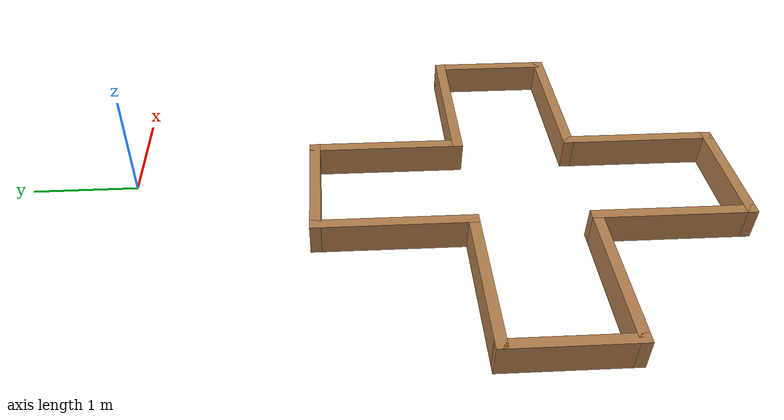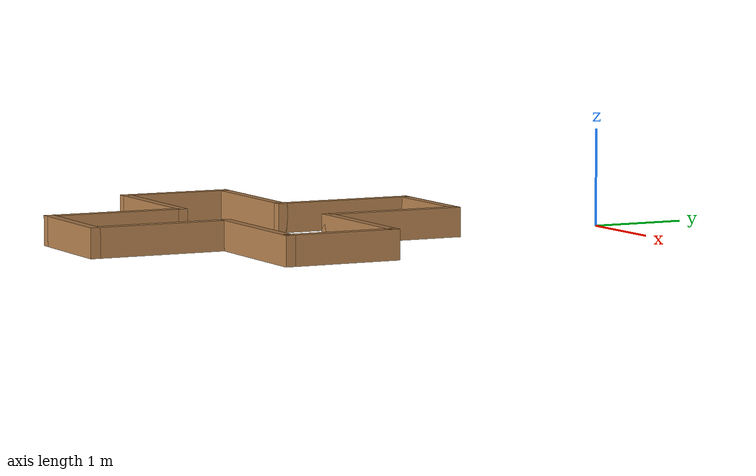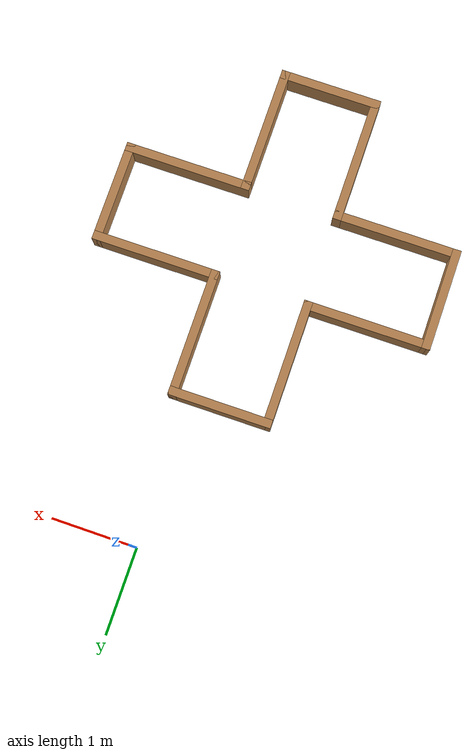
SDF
<?xml version='1.0'?>
<sdf version='1.7'>
  <model name='new_stage_cross'>
    <pose>-0.38 -2.845 0 0 -0 0</pose>
    <link name='Wall_0'>
      <collision name='Wall_0_Collision'>
        <geometry>
          <box>
            <size>1.2 0.1 0.3</size>
          </box>
        </geometry>
        <pose>0 0 0.15 0 -0 0</pose>
      </collision>
      <visual name='Wall_0_Visual'>
        <pose>0 0 0.15 0 -0 0</pose>
        <geometry>
          <box>
            <size>1.2 0.1 0.3</size>
          </box>
        </geometry>
        <material>
          <script>
            <uri>file://media/materials/scripts/gazebo.material</uri>
            <name>Gazebo/Wood</name>
          </script>
          <ambient>1 0.764706 0.305882 1</ambient>
        </material>
        <meta>
          <layer>0</layer>
        </meta>
      </visual>
      <pose>0 1.105 0 0 -0 0</pose>
    </link>
    <link name='Wall_10'>
      <collision name='Wall_10_Collision'>
        <geometry>
          <box>
            <size>1.5 0.1 0.3</size>
          </box>
        </geometry>
        <pose>0 0 0.15 0 -0 0</pose>
      </collision>
      <visual name='Wall_10_Visual'>
        <pose>0 0 0.15 0 -0 0</pose>
        <geometry>
          <box>
            <size>1.5 0.1 0.3</size>
          </box>
        </geometry>
        <material>
          <script>
            <uri>file://media/materials/scripts/gazebo.material</uri>
            <name>Gazebo/Wood</name>
          </script>
          <ambient>1 1 1 1</ambient>
        </material>
        <meta>
          <layer>0</layer>
        </meta>
      </visual>
      <pose>1.25 -1.395 0 0 -0 3.14159</pose>
    </link>
    <link name='Wall_12'>
      <collision name='Wall_12_Collision'>
        <geometry>
          <box>
            <size>1.5 0.1 0.3</size>
          </box>
        </geometry>
        <pose>0 0 0.15 0 -0 0</pose>
      </collision>
      <visual name='Wall_12_Visual'>
        <pose>0 0 0.15 0 -0 0</pose>
        <geometry>
          <box>
            <size>1.5 0.1 0.3</size>
          </box>
        </geometry>
        <material>
          <script>
            <uri>file://media/materials/scripts/gazebo.material</uri>
            <name>Gazebo/Wood</name>
          </script>
          <ambient>1 1 1 1</ambient>
        </material>
        <meta>
          <layer>0</layer>
        </meta>
      </visual>
      <pose>0.55 -2.095 0 0 -0 -1.5708</pose>
    </link>
    <link name='Wall_14'>
      <collision name='Wall_14_Collision'>
        <geometry>
          <box>
            <size>1.2 0.1 0.3</size>
          </box>
        </geometry>
        <pose>0 0 0.15 0 -0 0</pose>
      </collision>
      <visual name='Wall_14_Visual'>
        <pose>0 0 0.15 0 -0 0</pose>
        <geometry>
          <box>
            <size>1.2 0.1 0.3</size>
          </box>
        </geometry>
        <material>
          <script>
            <uri>file://media/materials/scripts/gazebo.material</uri>
            <name>Gazebo/Wood</name>
          </script>
          <ambient>1 0.764706 0.305882 1</ambient>
        </material>
        <meta>
          <layer>0</layer>
        </meta>
      </visual>
      <pose>0 -2.795 0 0 -0 3.14159</pose>
    </link>
    <link name='Wall_16'>
      <collision name='Wall_16_Collision'>
        <geometry>
          <box>
            <size>1.5 0.1 0.3</size>
          </box>
        </geometry>
        <pose>0 0 0.15 0 -0 0</pose>
      </collision>
      <visual name='Wall_16_Visual'>
        <pose>0 0 0.15 0 -0 0</pose>
        <geometry>
          <box>
            <size>1.5 0.1 0.3</size>
          </box>
        </geometry>
        <material>
          <script>
            <uri>file://media/materials/scripts/gazebo.material</uri>
            <name>Gazebo/Wood</name>
          </script>
          <ambient>1 0.764706 0.305882 1</ambient>
        </material>
        <meta>
          <layer>0</layer>
        </meta>
      </visual>
      <pose>-0.55 -2.095 0 0 -0 1.5708</pose>
    </link>
    <link name='Wall_18'>
      <collision name='Wall_18_Collision'>
        <geometry>
          <box>
            <size>1.5 0.1 0.3</size>
          </box>
        </geometry>
        <pose>0 0 0.15 0 -0 0</pose>
      </collision>
      <visual name='Wall_18_Visual'>
        <pose>0 0 0.15 0 -0 0</pose>
        <geometry>
          <box>
            <size>1.5 0.1 0.3</size>
          </box>
        </geometry>
        <material>
          <script>
            <uri>file://media/materials/scripts/gazebo.material</uri>
            <name>Gazebo/Wood</name>
          </script>
          <ambient>1 0.764706 0.305882 1</ambient>
        </material>
        <meta>
          <layer>0</layer>
        </meta>
      </visual>
      <pose>-1.25 -1.395 0 0 -0 3.14159</pose>
    </link>
    <link name='Wall_2'>
      <collision name='Wall_2_Collision'>
        <geometry>
          <box>
            <size>1.5 0.1 0.3</size>
          </box>
        </geometry>
        <pose>0 0 0.15 0 -0 0</pose>
      </collision>
      <visual name='Wall_2_Visual'>
        <pose>0 0 0.15 0 -0 0</pose>
        <geometry>
          <box>
            <size>1.5 0.1 0.3</size>
          </box>
        </geometry>
        <material>
          <script>
            <uri>file://media/materials/scripts/gazebo.material</uri>
            <name>Gazebo/Wood</name>
          </script>
          <ambient>1 0.764706 0.305882 1</ambient>
        </material>
        <meta>
          <layer>0</layer>
        </meta>
      </visual>
      <pose>-0.55 0.405 0 0 -0 -1.5708</pose>
    </link>
    <link name='Wall_20'>
      <collision name='Wall_20_Collision'>
        <geometry>
          <box>
            <size>1.2 0.1 0.3</size>
          </box>
        </geometry>
        <pose>0 0 0.15 0 -0 0</pose>
      </collision>
      <visual name='Wall_20_Visual'>
        <pose>0 0 0.15 0 -0 0</pose>
        <geometry>
          <box>
            <size>1.2 0.1 0.3</size>
          </box>
        </geometry>
        <material>
          <script>
            <uri>file://media/materials/scripts/gazebo.material</uri>
            <name>Gazebo/Wood</name>
          </script>
          <ambient>1 0.764706 0.305882 1</ambient>
        </material>
        <meta>
          <layer>0</layer>
        </meta>
      </visual>
      <pose>-1.95 -0.845 0 0 -0 1.5708</pose>
    </link>
    <link name='Wall_22'>
      <collision name='Wall_22_Collision'>
        <geometry>
          <box>
            <size>1.5 0.1 0.3</size>
          </box>
        </geometry>
        <pose>0 0 0.15 0 -0 0</pose>
      </collision>
      <visual name='Wall_22_Visual'>
        <pose>0 0 0.15 0 -0 0</pose>
        <geometry>
          <box>
            <size>1.5 0.1 0.3</size>
          </box>
        </geometry>
        <material>
          <script>
            <uri>file://media/materials/scripts/gazebo.material</uri>
            <name>Gazebo/Wood</name>
          </script>
          <ambient>1 0.764706 0.305882 1</ambient>
        </material>
        <meta>
          <layer>0</layer>
        </meta>
      </visual>
      <pose>-1.25 -0.295 0 0 -0 0</pose>
    </link>
    <link name='Wall_4'>
      <collision name='Wall_4_Collision'>
        <geometry>
          <box>
            <size>1.5 0.1 0.3</size>
          </box>
        </geometry>
        <pose>0 0 0.15 0 -0 0</pose>
      </collision>
      <visual name='Wall_4_Visual'>
        <pose>0 0 0.15 0 -0 0</pose>
        <geometry>
          <box>
            <size>1.5 0.1 0.3</size>
          </box>
        </geometry>
        <material>
          <script>
            <uri>file://media/materials/scripts/gazebo.material</uri>
            <name>Gazebo/Wood</name>
          </script>
          <ambient>1 0.764706 0.305882 1</ambient>
        </material>
        <meta>
          <layer>0</layer>
        </meta>
      </visual>
      <pose>0.55 0.405 0 0 -0 -1.5708</pose>
    </link>
    <link name='Wall_6'>
      <collision name='Wall_6_Collision'>
        <geometry>
          <box>
            <size>1.5 0.1 0.3</size>
          </box>
        </geometry>
        <pose>0 0 0.15 0 -0 0</pose>
      </collision>
      <visual name='Wall_6_Visual'>
        <pose>0 0 0.15 0 -0 0</pose>
        <geometry>
          <box>
            <size>1.5 0.1 0.3</size>
          </box>
        </geometry>
        <material>
          <script>
            <uri>file://media/materials/scripts/gazebo.material</uri>
            <name>Gazebo/Wood</name>
          </script>
          <ambient>1 0.764706 0.305882 1</ambient>
        </material>
        <meta>
          <layer>0</layer>
        </meta>
      </visual>
      <pose>1.25 -0.295 0 0 -0 0</pose>
    </link>
    <link name='Wall_8'>
      <collision name='Wall_8_Collision'>
        <geometry>
          <box>
            <size>1.2 0.1 0.3</size>
          </box>
        </geometry>
        <pose>0 0 0.15 0 -0 0</pose>
      </collision>
      <visual name='Wall_8_Visual'>
        <pose>0 0 0.15 0 -0 0</pose>
        <geometry>
          <box>
            <size>1.2 0.1 0.3</size>
          </box>
        </geometry>
        <material>
          <script>
            <uri>file://media/materials/scripts/gazebo.material</uri>
            <name>Gazebo/Wood</name>
          </script>
          <ambient>1 0.764706 0.305882 1</ambient>
        </material>
        <meta>
          <layer>0</layer>
        </meta>
      </visual>
      <pose>1.95 -0.845 0 0 -0 -1.5708</pose>
    </link>
    <static>1</static>
  </model>
</sdf>
